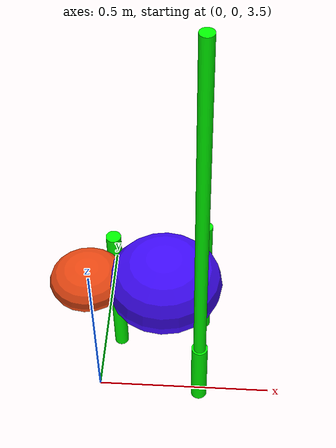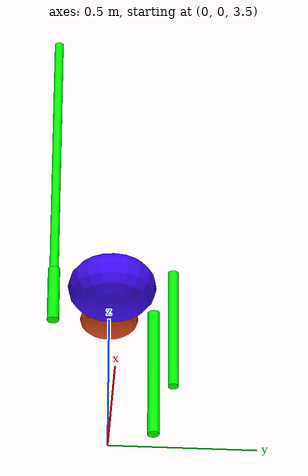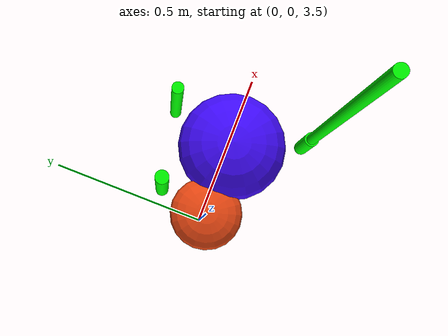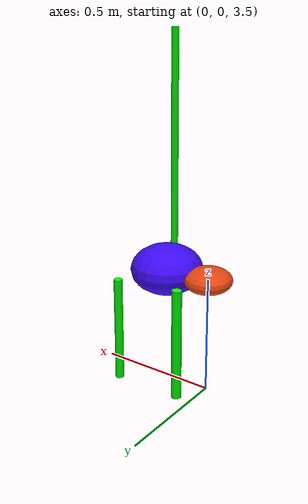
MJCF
<mujoco model="unnamed_model">
  <option timestep="0.01"/>
  <visual>
    <headlight ambient="0.5 0.5 0.5"/>
  </visual>
  <default>
    <default class="/"/>
  </default>
  <worldbody>
    <light name="//unnamed_light_0" class="/" pos="0 0 3" dir="0 0 -1" diffuse="0.5 0.5 0.5"/>
    <geom name="//unnamed_geom_0" class="/" type="plane" size="50 50 0.10000000000000001"/>
    <body name="//unnamed_body_0" pos="0 0 4">
      <joint name="//unnamed_joint_0" class="/" type="free"/>
      <geom name="//unnamed_geom_1" class="/" type="ellipsoid" size="0.10000000000000001 0.10000000000000001 0.050000000000000003" rgba="0.91000000000000003 0.27800000000000002 0.070999999999999994 1" pos="0 0 0"/>
      <geom name="//unnamed_geom_2" class="/" type="ellipsoid" size="0.14999999999999999 0.14999999999999999 0.10000000000000001" rgba="0.247 0.035000000000000003 0.97999999999999998 1" pos="0.20000000000000001 0 0"/>
      <body name="limb1" pos="0.050000000000000003 0.14999999999999999 -0.2402781845109396">
        <geom name="//unnamed_geom_3" class="/" type="cylinder" size="0.020521538846043373 0.2402781845109396" rgba="0 1 0 1"/>
        <joint name="limb1_joint" class="/" type="hinge" pos="0 0 0.2402781845109396" axis="0 1 0" range="-45 45"/>
      </body>
      <body name="limb2" pos="0.29999999999999999 0.20000000000000001 -0.22216440118826603">
        <geom name="//unnamed_geom_4" class="/" type="cylinder" size="0.017669805192567285 0.22216440118826603" rgba="0 1 0 1"/>
        <joint name="limb2_joint" class="/" type="hinge" pos="0 0 0.22216440118826603" axis="0 1 0" range="-45 45"/>
      </body>
      <body name="limb3" pos="0.29999999999999999 -0.20000000000000001 -0.10125253022335126">
        <geom name="//unnamed_geom_5" class="/" type="cylinder" size="0.020032402625237068 0.10125253022335126" rgba="0 1 0 1"/>
        <joint name="limb3_joint" class="/" type="hinge" pos="0 0 0.10125253022335126" axis="0 1 0" range="-45 45"/>
      </body>
      <body name="back_limb1" pos="0.29999999999999999 -0.20000000000000001 0.47269930399789306">
        <geom name="//unnamed_geom_6" class="/" type="cylinder" size="0.015151331015500629 0.47269930399789306" rgba="0 1 0 1"/>
        <joint name="back_limb1_joint" class="/" type="hinge" pos="0 0 -0.47269930399789306" axis="0 1 0" range="-45 45"/>
      </body>
    </body>
  </worldbody>
  <actuator>
    <motor name="motor_limb1_joint" class="/" ctrllimited="true" ctrlrange="-45 45" gear="1" joint="limb1_joint"/>
    <motor name="motor_limb2_joint" class="/" ctrllimited="true" ctrlrange="-45 45" gear="1" joint="limb2_joint"/>
    <motor name="motor_limb3_joint" class="/" ctrllimited="true" ctrlrange="-45 45" gear="1" joint="limb3_joint"/>
    <motor name="motor_back_back_limb1_joint" class="/" ctrllimited="true" ctrlrange="-45 45" gear="1" joint="back_limb1_joint"/>
  </actuator>
</mujoco>
